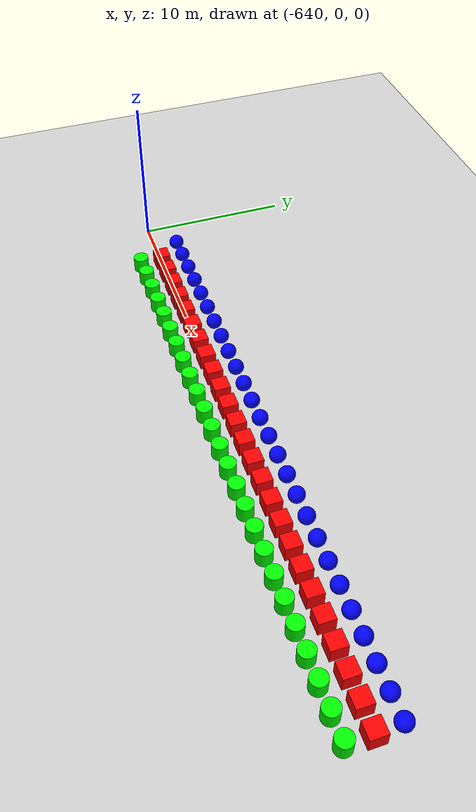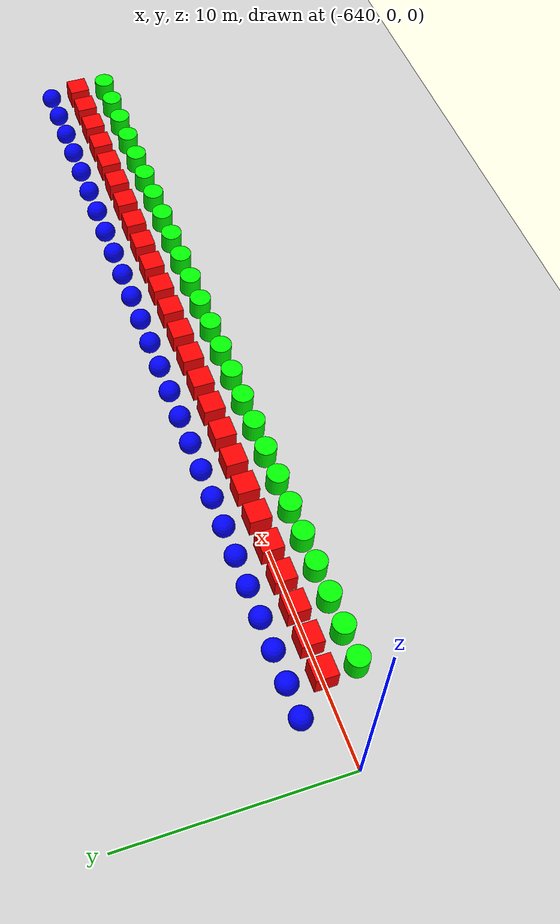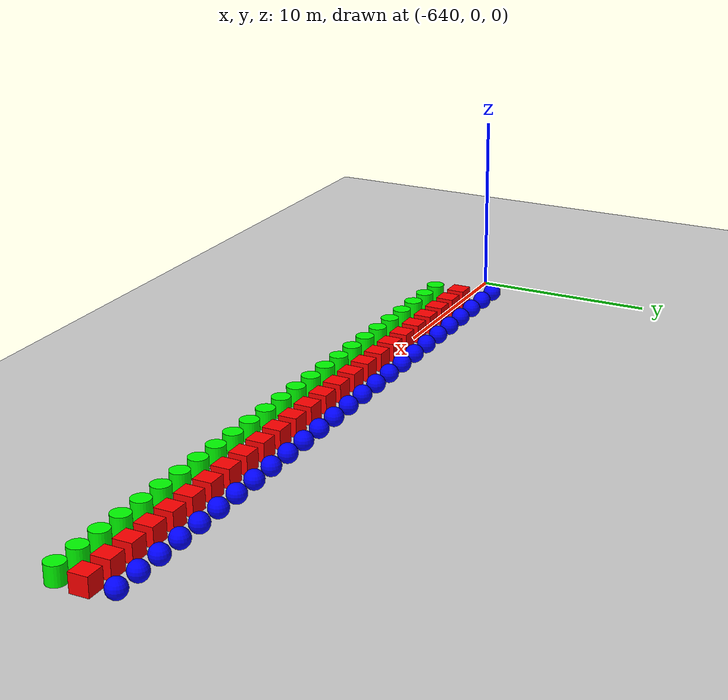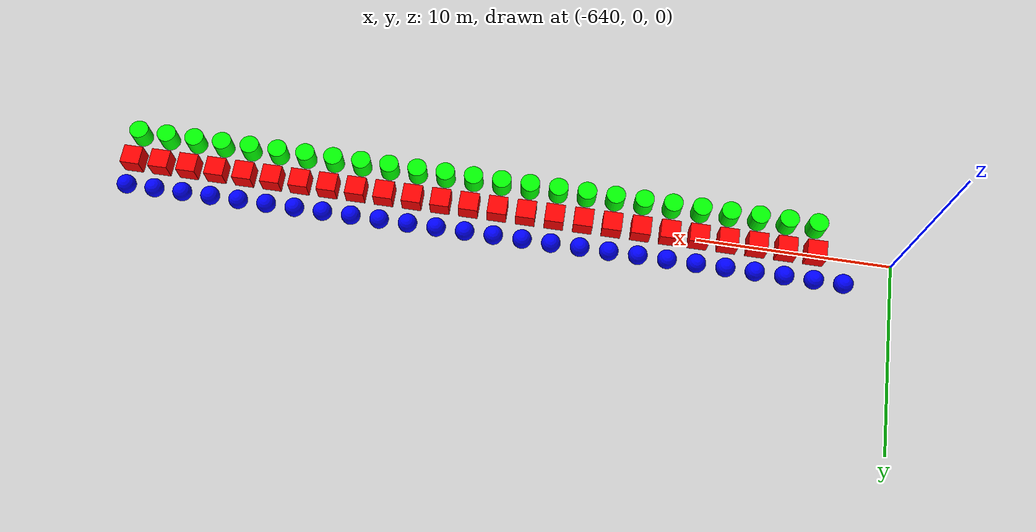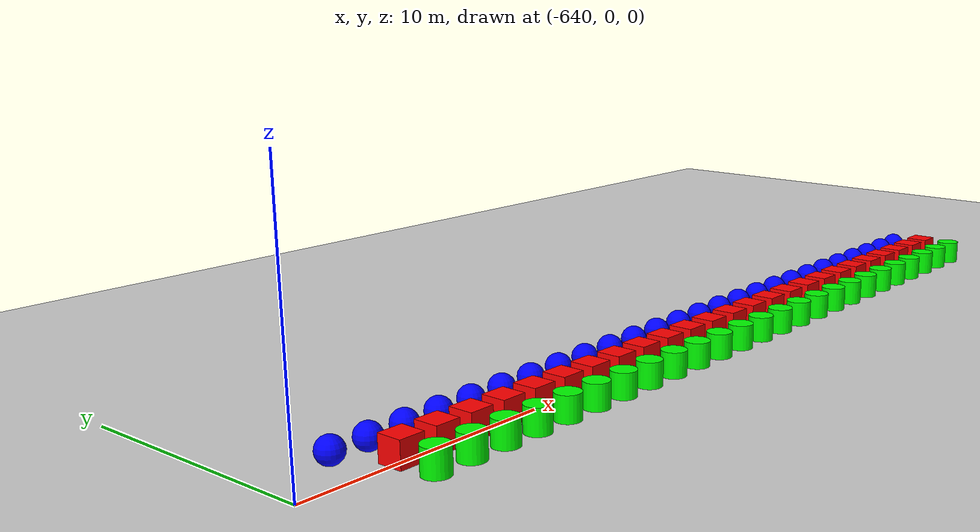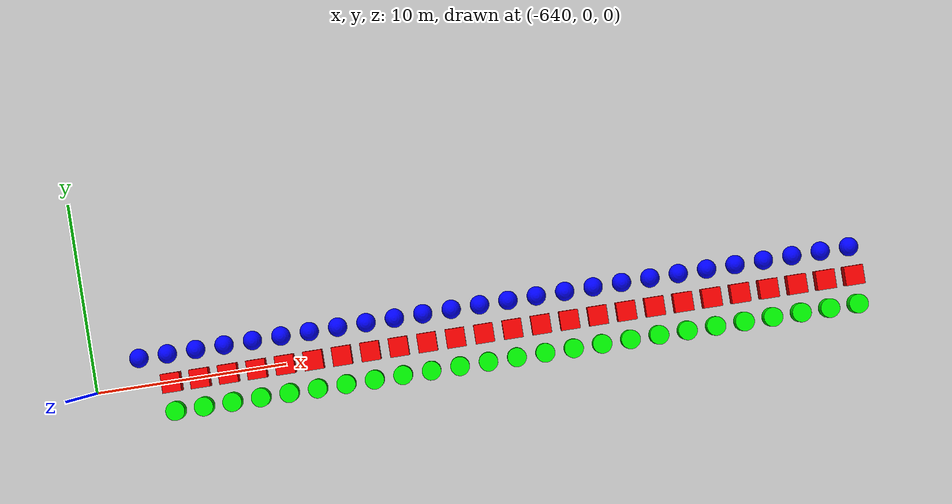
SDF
<sdf version="1.6">
 <world name="shapes">
  <model name="ground_plane">
   <static>true</static>
   <link name="link">
    <collision name="collision">
     <geometry><plane><normal>0 0 1</normal><size>100 100</size></plane></geometry>
    </collision>
    <visual name="visual">
     <geometry><plane><normal>0 0 1</normal><size>100 100</size></plane></geometry>
     <material>
      <ambient>0.8 0.8 0.8 1</ambient>
      <diffuse>0.8 0.8 0.8 1</diffuse>
      <specular>0.8 0.8 0.8 1</specular>
     </material>
    </visual>
   </link>
  </model>
  <model name="sphere_75">
   <pose>-637.5 1.5 0.5 0 0 0</pose>
   <link name="sphere_link">
    <inertial>
     <inertia><ixx>3</ixx><ixy>0</ixy><ixz>0</ixz><iyy>3</iyy><iyz>0</iyz><izz>3</izz></inertia>
     <mass>3.0</mass>
    </inertial>
    <collision name="sphere_collision"><geometry><sphere><radius>0.5</radius></sphere></geometry></collision>
    <visual name="sphere_visual">
     <geometry><sphere><radius>0.5</radius></sphere></geometry>
     <material><ambient>0 0 1 1</ambient><diffuse>0 0 1 1</diffuse><specular>0 0 1 1</specular></material>
    </visual>
   </link>
  </model>
  <model name="box_76">
   <pose>-636.0 0 0.5 0 0 0</pose>
   <link name="box_link">
    <inertial>
     <inertia><ixx>1</ixx><ixy>0</ixy><ixz>0</ixz><iyy>1</iyy><iyz>0</iyz><izz>1</izz></inertia>
     <mass>1.0</mass>
    </inertial>
    <collision name="box_collision"><geometry><box><size>1 1 1</size></box></geometry></collision>
    <visual name="box_visual">
     <geometry><box><size>1 1 1</size></box></geometry>
     <material><ambient>1 0 0 1</ambient><diffuse>1 0 0 1</diffuse><specular>1 0 0 1</specular></material>
    </visual>
   </link>
  </model>
  <model name="cylinder_76">
   <pose>-636.0 -1.5 0.5 0 0 0</pose>
   <link name="cylinder_link">
    <inertial>
     <inertia><ixx>2</ixx><ixy>0</ixy><ixz>0</ixz><iyy>2</iyy><iyz>0</iyz><izz>2</izz></inertia>
     <mass>2.0</mass>
    </inertial>
    <collision name="cylinder_collision">
     <geometry><cylinder><radius>0.5</radius><length>1.0</length></cylinder></geometry>
    </collision>
    <visual name="cylinder_visual">
     <geometry><cylinder><radius>0.5</radius><length>1.0</length></cylinder></geometry>
     <material><ambient>0 1 0 1</ambient><diffuse>0 1 0 1</diffuse><specular>0 1 0 1</specular></material>
    </visual>
   </link>
  </model>
  <model name="sphere_76">
   <pose>-636.0 1.5 0.5 0 0 0</pose>
   <link name="sphere_link">
    <inertial>
     <inertia><ixx>3</ixx><ixy>0</ixy><ixz>0</ixz><iyy>3</iyy><iyz>0</iyz><izz>3</izz></inertia>
     <mass>3.0</mass>
    </inertial>
    <collision name="sphere_collision"><geometry><sphere><radius>0.5</radius></sphere></geometry></collision>
    <visual name="sphere_visual">
     <geometry><sphere><radius>0.5</radius></sphere></geometry>
     <material><ambient>0 0 1 1</ambient><diffuse>0 0 1 1</diffuse><specular>0 0 1 1</specular></material>
    </visual>
   </link>
  </model>
  <model name="box_77">
   <pose>-634.5 0 0.5 0 0 0</pose>
   <link name="box_link">
    <inertial>
     <inertia><ixx>1</ixx><ixy>0</ixy><ixz>0</ixz><iyy>1</iyy><iyz>0</iyz><izz>1</izz></inertia>
     <mass>1.0</mass>
    </inertial>
    <collision name="box_collision"><geometry><box><size>1 1 1</size></box></geometry></collision>
    <visual name="box_visual">
     <geometry><box><size>1 1 1</size></box></geometry>
     <material><ambient>1 0 0 1</ambient><diffuse>1 0 0 1</diffuse><specular>1 0 0 1</specular></material>
    </visual>
   </link>
  </model>
  <model name="cylinder_77">
   <pose>-634.5 -1.5 0.5 0 0 0</pose>
   <link name="cylinder_link">
    <inertial>
     <inertia><ixx>2</ixx><ixy>0</ixy><ixz>0</ixz><iyy>2</iyy><iyz>0</iyz><izz>2</izz></inertia>
     <mass>2.0</mass>
    </inertial>
    <collision name="cylinder_collision">
     <geometry><cylinder><radius>0.5</radius><length>1.0</length></cylinder></geometry>
    </collision>
    <visual name="cylinder_visual">
     <geometry><cylinder><radius>0.5</radius><length>1.0</length></cylinder></geometry>
     <material><ambient>0 1 0 1</ambient><diffuse>0 1 0 1</diffuse><specular>0 1 0 1</specular></material>
    </visual>
   </link>
  </model>
  <model name="sphere_77">
   <pose>-634.5 1.5 0.5 0 0 0</pose>
   <link name="sphere_link">
    <inertial>
     <inertia><ixx>3</ixx><ixy>0</ixy><ixz>0</ixz><iyy>3</iyy><iyz>0</iyz><izz>3</izz></inertia>
     <mass>3.0</mass>
    </inertial>
    <collision name="sphere_collision"><geometry><sphere><radius>0.5</radius></sphere></geometry></collision>
    <visual name="sphere_visual">
     <geometry><sphere><radius>0.5</radius></sphere></geometry>
     <material><ambient>0 0 1 1</ambient><diffuse>0 0 1 1</diffuse><specular>0 0 1 1</specular></material>
    </visual>
   </link>
  </model>
  <model name="box_78">
   <pose>-633.0 0 0.5 0 0 0</pose>
   <link name="box_link">
    <inertial>
     <inertia><ixx>1</ixx><ixy>0</ixy><ixz>0</ixz><iyy>1</iyy><iyz>0</iyz><izz>1</izz></inertia>
     <mass>1.0</mass>
    </inertial>
    <collision name="box_collision"><geometry><box><size>1 1 1</size></box></geometry></collision>
    <visual name="box_visual">
     <geometry><box><size>1 1 1</size></box></geometry>
     <material><ambient>1 0 0 1</ambient><diffuse>1 0 0 1</diffuse><specular>1 0 0 1</specular></material>
    </visual>
   </link>
  </model>
  <model name="cylinder_78">
   <pose>-633.0 -1.5 0.5 0 0 0</pose>
   <link name="cylinder_link">
    <inertial>
     <inertia><ixx>2</ixx><ixy>0</ixy><ixz>0</ixz><iyy>2</iyy><iyz>0</iyz><izz>2</izz></inertia>
     <mass>2.0</mass>
    </inertial>
    <collision name="cylinder_collision">
     <geometry><cylinder><radius>0.5</radius><length>1.0</length></cylinder></geometry>
    </collision>
    <visual name="cylinder_visual">
     <geometry><cylinder><radius>0.5</radius><length>1.0</length></cylinder></geometry>
     <material><ambient>0 1 0 1</ambient><diffuse>0 1 0 1</diffuse><specular>0 1 0 1</specular></material>
    </visual>
   </link>
  </model>
  <model name="sphere_78">
   <pose>-633.0 1.5 0.5 0 0 0</pose>
   <link name="sphere_link">
    <inertial>
     <inertia><ixx>3</ixx><ixy>0</ixy><ixz>0</ixz><iyy>3</iyy><iyz>0</iyz><izz>3</izz></inertia>
     <mass>3.0</mass>
    </inertial>
    <collision name="sphere_collision"><geometry><sphere><radius>0.5</radius></sphere></geometry></collision>
    <visual name="sphere_visual">
     <geometry><sphere><radius>0.5</radius></sphere></geometry>
     <material><ambient>0 0 1 1</ambient><diffuse>0 0 1 1</diffuse><specular>0 0 1 1</specular></material>
    </visual>
   </link>
  </model>
  <model name="box_79">
   <pose>-631.5 0 0.5 0 0 0</pose>
   <link name="box_link">
    <inertial>
     <inertia><ixx>1</ixx><ixy>0</ixy><ixz>0</ixz><iyy>1</iyy><iyz>0</iyz><izz>1</izz></inertia>
     <mass>1.0</mass>
    </inertial>
    <collision name="box_collision"><geometry><box><size>1 1 1</size></box></geometry></collision>
    <visual name="box_visual">
     <geometry><box><size>1 1 1</size></box></geometry>
     <material><ambient>1 0 0 1</ambient><diffuse>1 0 0 1</diffuse><specular>1 0 0 1</specular></material>
    </visual>
   </link>
  </model>
  <model name="cylinder_79">
   <pose>-631.5 -1.5 0.5 0 0 0</pose>
   <link name="cylinder_link">
    <inertial>
     <inertia><ixx>2</ixx><ixy>0</ixy><ixz>0</ixz><iyy>2</iyy><iyz>0</iyz><izz>2</izz></inertia>
     <mass>2.0</mass>
    </inertial>
    <collision name="cylinder_collision">
     <geometry><cylinder><radius>0.5</radius><length>1.0</length></cylinder></geometry>
    </collision>
    <visual name="cylinder_visual">
     <geometry><cylinder><radius>0.5</radius><length>1.0</length></cylinder></geometry>
     <material><ambient>0 1 0 1</ambient><diffuse>0 1 0 1</diffuse><specular>0 1 0 1</specular></material>
    </visual>
   </link>
  </model>
  <model name="sphere_79">
   <pose>-631.5 1.5 0.5 0 0 0</pose>
   <link name="sphere_link">
    <inertial>
     <inertia><ixx>3</ixx><ixy>0</ixy><ixz>0</ixz><iyy>3</iyy><iyz>0</iyz><izz>3</izz></inertia>
     <mass>3.0</mass>
    </inertial>
    <collision name="sphere_collision"><geometry><sphere><radius>0.5</radius></sphere></geometry></collision>
    <visual name="sphere_visual">
     <geometry><sphere><radius>0.5</radius></sphere></geometry>
     <material><ambient>0 0 1 1</ambient><diffuse>0 0 1 1</diffuse><specular>0 0 1 1</specular></material>
    </visual>
   </link>
  </model>
  <model name="box_80">
   <pose>-630.0 0 0.5 0 0 0</pose>
   <link name="box_link">
    <inertial>
     <inertia><ixx>1</ixx><ixy>0</ixy><ixz>0</ixz><iyy>1</iyy><iyz>0</iyz><izz>1</izz></inertia>
     <mass>1.0</mass>
    </inertial>
    <collision name="box_collision"><geometry><box><size>1 1 1</size></box></geometry></collision>
    <visual name="box_visual">
     <geometry><box><size>1 1 1</size></box></geometry>
     <material><ambient>1 0 0 1</ambient><diffuse>1 0 0 1</diffuse><specular>1 0 0 1</specular></material>
    </visual>
   </link>
  </model>
  <model name="cylinder_80">
   <pose>-630.0 -1.5 0.5 0 0 0</pose>
   <link name="cylinder_link">
    <inertial>
     <inertia><ixx>2</ixx><ixy>0</ixy><ixz>0</ixz><iyy>2</iyy><iyz>0</iyz><izz>2</izz></inertia>
     <mass>2.0</mass>
    </inertial>
    <collision name="cylinder_collision">
     <geometry><cylinder><radius>0.5</radius><length>1.0</length></cylinder></geometry>
    </collision>
    <visual name="cylinder_visual">
     <geometry><cylinder><radius>0.5</radius><length>1.0</length></cylinder></geometry>
     <material><ambient>0 1 0 1</ambient><diffuse>0 1 0 1</diffuse><specular>0 1 0 1</specular></material>
    </visual>
   </link>
  </model>
  <model name="sphere_80">
   <pose>-630.0 1.5 0.5 0 0 0</pose>
   <link name="sphere_link">
    <inertial>
     <inertia><ixx>3</ixx><ixy>0</ixy><ixz>0</ixz><iyy>3</iyy><iyz>0</iyz><izz>3</izz></inertia>
     <mass>3.0</mass>
    </inertial>
    <collision name="sphere_collision"><geometry><sphere><radius>0.5</radius></sphere></geometry></collision>
    <visual name="sphere_visual">
     <geometry><sphere><radius>0.5</radius></sphere></geometry>
     <material><ambient>0 0 1 1</ambient><diffuse>0 0 1 1</diffuse><specular>0 0 1 1</specular></material>
    </visual>
   </link>
  </model>
  <model name="box_81">
   <pose>-628.5 0 0.5 0 0 0</pose>
   <link name="box_link">
    <inertial>
     <inertia><ixx>1</ixx><ixy>0</ixy><ixz>0</ixz><iyy>1</iyy><iyz>0</iyz><izz>1</izz></inertia>
     <mass>1.0</mass>
    </inertial>
    <collision name="box_collision"><geometry><box><size>1 1 1</size></box></geometry></collision>
    <visual name="box_visual">
     <geometry><box><size>1 1 1</size></box></geometry>
     <material><ambient>1 0 0 1</ambient><diffuse>1 0 0 1</diffuse><specular>1 0 0 1</specular></material>
    </visual>
   </link>
  </model>
  <model name="cylinder_81">
   <pose>-628.5 -1.5 0.5 0 0 0</pose>
   <link name="cylinder_link">
    <inertial>
     <inertia><ixx>2</ixx><ixy>0</ixy><ixz>0</ixz><iyy>2</iyy><iyz>0</iyz><izz>2</izz></inertia>
     <mass>2.0</mass>
    </inertial>
    <collision name="cylinder_collision">
     <geometry><cylinder><radius>0.5</radius><length>1.0</length></cylinder></geometry>
    </collision>
    <visual name="cylinder_visual">
     <geometry><cylinder><radius>0.5</radius><length>1.0</length></cylinder></geometry>
     <material><ambient>0 1 0 1</ambient><diffuse>0 1 0 1</diffuse><specular>0 1 0 1</specular></material>
    </visual>
   </link>
  </model>
  <model name="sphere_81">
   <pose>-628.5 1.5 0.5 0 0 0</pose>
   <link name="sphere_link">
    <inertial>
     <inertia><ixx>3</ixx><ixy>0</ixy><ixz>0</ixz><iyy>3</iyy><iyz>0</iyz><izz>3</izz></inertia>
     <mass>3.0</mass>
    </inertial>
    <collision name="sphere_collision"><geometry><sphere><radius>0.5</radius></sphere></geometry></collision>
    <visual name="sphere_visual">
     <geometry><sphere><radius>0.5</radius></sphere></geometry>
     <material><ambient>0 0 1 1</ambient><diffuse>0 0 1 1</diffuse><specular>0 0 1 1</specular></material>
    </visual>
   </link>
  </model>
  <model name="box_82">
   <pose>-627.0 0 0.5 0 0 0</pose>
   <link name="box_link">
    <inertial>
     <inertia><ixx>1</ixx><ixy>0</ixy><ixz>0</ixz><iyy>1</iyy><iyz>0</iyz><izz>1</izz></inertia>
     <mass>1.0</mass>
    </inertial>
    <collision name="box_collision"><geometry><box><size>1 1 1</size></box></geometry></collision>
    <visual name="box_visual">
     <geometry><box><size>1 1 1</size></box></geometry>
     <material><ambient>1 0 0 1</ambient><diffuse>1 0 0 1</diffuse><specular>1 0 0 1</specular></material>
    </visual>
   </link>
  </model>
  <model name="cylinder_82">
   <pose>-627.0 -1.5 0.5 0 0 0</pose>
   <link name="cylinder_link">
    <inertial>
     <inertia><ixx>2</ixx><ixy>0</ixy><ixz>0</ixz><iyy>2</iyy><iyz>0</iyz><izz>2</izz></inertia>
     <mass>2.0</mass>
    </inertial>
    <collision name="cylinder_collision">
     <geometry><cylinder><radius>0.5</radius><length>1.0</length></cylinder></geometry>
    </collision>
    <visual name="cylinder_visual">
     <geometry><cylinder><radius>0.5</radius><length>1.0</length></cylinder></geometry>
     <material><ambient>0 1 0 1</ambient><diffuse>0 1 0 1</diffuse><specular>0 1 0 1</specular></material>
    </visual>
   </link>
  </model>
  <model name="sphere_82">
   <pose>-627.0 1.5 0.5 0 0 0</pose>
   <link name="sphere_link">
    <inertial>
     <inertia><ixx>3</ixx><ixy>0</ixy><ixz>0</ixz><iyy>3</iyy><iyz>0</iyz><izz>3</izz></inertia>
     <mass>3.0</mass>
    </inertial>
    <collision name="sphere_collision"><geometry><sphere><radius>0.5</radius></sphere></geometry></collision>
    <visual name="sphere_visual">
     <geometry><sphere><radius>0.5</radius></sphere></geometry>
     <material><ambient>0 0 1 1</ambient><diffuse>0 0 1 1</diffuse><specular>0 0 1 1</specular></material>
    </visual>
   </link>
  </model>
  <model name="box_83">
   <pose>-625.5 0 0.5 0 0 0</pose>
   <link name="box_link">
    <inertial>
     <inertia><ixx>1</ixx><ixy>0</ixy><ixz>0</ixz><iyy>1</iyy><iyz>0</iyz><izz>1</izz></inertia>
     <mass>1.0</mass>
    </inertial>
    <collision name="box_collision"><geometry><box><size>1 1 1</size></box></geometry></collision>
    <visual name="box_visual">
     <geometry><box><size>1 1 1</size></box></geometry>
     <material><ambient>1 0 0 1</ambient><diffuse>1 0 0 1</diffuse><specular>1 0 0 1</specular></material>
    </visual>
   </link>
  </model>
  <model name="cylinder_83">
   <pose>-625.5 -1.5 0.5 0 0 0</pose>
   <link name="cylinder_link">
    <inertial>
     <inertia><ixx>2</ixx><ixy>0</ixy><ixz>0</ixz><iyy>2</iyy><iyz>0</iyz><izz>2</izz></inertia>
     <mass>2.0</mass>
    </inertial>
    <collision name="cylinder_collision">
     <geometry><cylinder><radius>0.5</radius><length>1.0</length></cylinder></geometry>
    </collision>
    <visual name="cylinder_visual">
     <geometry><cylinder><radius>0.5</radius><length>1.0</length></cylinder></geometry>
     <material><ambient>0 1 0 1</ambient><diffuse>0 1 0 1</diffuse><specular>0 1 0 1</specular></material>
    </visual>
   </link>
  </model>
  <model name="sphere_83">
   <pose>-625.5 1.5 0.5 0 0 0</pose>
   <link name="sphere_link">
    <inertial>
     <inertia><ixx>3</ixx><ixy>0</ixy><ixz>0</ixz><iyy>3</iyy><iyz>0</iyz><izz>3</izz></inertia>
     <mass>3.0</mass>
    </inertial>
    <collision name="sphere_collision"><geometry><sphere><radius>0.5</radius></sphere></geometry></collision>
    <visual name="sphere_visual">
     <geometry><sphere><radius>0.5</radius></sphere></geometry>
     <material><ambient>0 0 1 1</ambient><diffuse>0 0 1 1</diffuse><specular>0 0 1 1</specular></material>
    </visual>
   </link>
  </model>
  <model name="box_84">
   <pose>-624.0 0 0.5 0 0 0</pose>
   <link name="box_link">
    <inertial>
     <inertia><ixx>1</ixx><ixy>0</ixy><ixz>0</ixz><iyy>1</iyy><iyz>0</iyz><izz>1</izz></inertia>
     <mass>1.0</mass>
    </inertial>
    <collision name="box_collision"><geometry><box><size>1 1 1</size></box></geometry></collision>
    <visual name="box_visual">
     <geometry><box><size>1 1 1</size></box></geometry>
     <material><ambient>1 0 0 1</ambient><diffuse>1 0 0 1</diffuse><specular>1 0 0 1</specular></material>
    </visual>
   </link>
  </model>
  <model name="cylinder_84">
   <pose>-624.0 -1.5 0.5 0 0 0</pose>
   <link name="cylinder_link">
    <inertial>
     <inertia><ixx>2</ixx><ixy>0</ixy><ixz>0</ixz><iyy>2</iyy><iyz>0</iyz><izz>2</izz></inertia>
     <mass>2.0</mass>
    </inertial>
    <collision name="cylinder_collision">
     <geometry><cylinder><radius>0.5</radius><length>1.0</length></cylinder></geometry>
    </collision>
    <visual name="cylinder_visual">
     <geometry><cylinder><radius>0.5</radius><length>1.0</length></cylinder></geometry>
     <material><ambient>0 1 0 1</ambient><diffuse>0 1 0 1</diffuse><specular>0 1 0 1</specular></material>
    </visual>
   </link>
  </model>
  <model name="sphere_84">
   <pose>-624.0 1.5 0.5 0 0 0</pose>
   <link name="sphere_link">
    <inertial>
     <inertia><ixx>3</ixx><ixy>0</ixy><ixz>0</ixz><iyy>3</iyy><iyz>0</iyz><izz>3</izz></inertia>
     <mass>3.0</mass>
    </inertial>
    <collision name="sphere_collision"><geometry><sphere><radius>0.5</radius></sphere></geometry></collision>
    <visual name="sphere_visual">
     <geometry><sphere><radius>0.5</radius></sphere></geometry>
     <material><ambient>0 0 1 1</ambient><diffuse>0 0 1 1</diffuse><specular>0 0 1 1</specular></material>
    </visual>
   </link>
  </model>
  <model name="box_85">
   <pose>-622.5 0 0.5 0 0 0</pose>
   <link name="box_link">
    <inertial>
     <inertia><ixx>1</ixx><ixy>0</ixy><ixz>0</ixz><iyy>1</iyy><iyz>0</iyz><izz>1</izz></inertia>
     <mass>1.0</mass>
    </inertial>
    <collision name="box_collision"><geometry><box><size>1 1 1</size></box></geometry></collision>
    <visual name="box_visual">
     <geometry><box><size>1 1 1</size></box></geometry>
     <material><ambient>1 0 0 1</ambient><diffuse>1 0 0 1</diffuse><specular>1 0 0 1</specular></material>
    </visual>
   </link>
  </model>
  <model name="cylinder_85">
   <pose>-622.5 -1.5 0.5 0 0 0</pose>
   <link name="cylinder_link">
    <inertial>
     <inertia><ixx>2</ixx><ixy>0</ixy><ixz>0</ixz><iyy>2</iyy><iyz>0</iyz><izz>2</izz></inertia>
     <mass>2.0</mass>
    </inertial>
    <collision name="cylinder_collision">
     <geometry><cylinder><radius>0.5</radius><length>1.0</length></cylinder></geometry>
    </collision>
    <visual name="cylinder_visual">
     <geometry><cylinder><radius>0.5</radius><length>1.0</length></cylinder></geometry>
     <material><ambient>0 1 0 1</ambient><diffuse>0 1 0 1</diffuse><specular>0 1 0 1</specular></material>
    </visual>
   </link>
  </model>
  <model name="sphere_85">
   <pose>-622.5 1.5 0.5 0 0 0</pose>
   <link name="sphere_link">
    <inertial>
     <inertia><ixx>3</ixx><ixy>0</ixy><ixz>0</ixz><iyy>3</iyy><iyz>0</iyz><izz>3</izz></inertia>
     <mass>3.0</mass>
    </inertial>
    <collision name="sphere_collision"><geometry><sphere><radius>0.5</radius></sphere></geometry></collision>
    <visual name="sphere_visual">
     <geometry><sphere><radius>0.5</radius></sphere></geometry>
     <material><ambient>0 0 1 1</ambient><diffuse>0 0 1 1</diffuse><specular>0 0 1 1</specular></material>
    </visual>
   </link>
  </model>
  <model name="box_86">
   <pose>-621.0 0 0.5 0 0 0</pose>
   <link name="box_link">
    <inertial>
     <inertia><ixx>1</ixx><ixy>0</ixy><ixz>0</ixz><iyy>1</iyy><iyz>0</iyz><izz>1</izz></inertia>
     <mass>1.0</mass>
    </inertial>
    <collision name="box_collision"><geometry><box><size>1 1 1</size></box></geometry></collision>
    <visual name="box_visual">
     <geometry><box><size>1 1 1</size></box></geometry>
     <material><ambient>1 0 0 1</ambient><diffuse>1 0 0 1</diffuse><specular>1 0 0 1</specular></material>
    </visual>
   </link>
  </model>
  <model name="cylinder_86">
   <pose>-621.0 -1.5 0.5 0 0 0</pose>
   <link name="cylinder_link">
    <inertial>
     <inertia><ixx>2</ixx><ixy>0</ixy><ixz>0</ixz><iyy>2</iyy><iyz>0</iyz><izz>2</izz></inertia>
     <mass>2.0</mass>
    </inertial>
    <collision name="cylinder_collision">
     <geometry><cylinder><radius>0.5</radius><length>1.0</length></cylinder></geometry>
    </collision>
    <visual name="cylinder_visual">
     <geometry><cylinder><radius>0.5</radius><length>1.0</length></cylinder></geometry>
     <material><ambient>0 1 0 1</ambient><diffuse>0 1 0 1</diffuse><specular>0 1 0 1</specular></material>
    </visual>
   </link>
  </model>
  <model name="sphere_86">
   <pose>-621.0 1.5 0.5 0 0 0</pose>
   <link name="sphere_link">
    <inertial>
     <inertia><ixx>3</ixx><ixy>0</ixy><ixz>0</ixz><iyy>3</iyy><iyz>0</iyz><izz>3</izz></inertia>
     <mass>3.0</mass>
    </inertial>
    <collision name="sphere_collision"><geometry><sphere><radius>0.5</radius></sphere></geometry></collision>
    <visual name="sphere_visual">
     <geometry><sphere><radius>0.5</radius></sphere></geometry>
     <material><ambient>0 0 1 1</ambient><diffuse>0 0 1 1</diffuse><specular>0 0 1 1</specular></material>
    </visual>
   </link>
  </model>
  <model name="box_87">
   <pose>-619.5 0 0.5 0 0 0</pose>
   <link name="box_link">
    <inertial>
     <inertia><ixx>1</ixx><ixy>0</ixy><ixz>0</ixz><iyy>1</iyy><iyz>0</iyz><izz>1</izz></inertia>
     <mass>1.0</mass>
    </inertial>
    <collision name="box_collision"><geometry><box><size>1 1 1</size></box></geometry></collision>
    <visual name="box_visual">
     <geometry><box><size>1 1 1</size></box></geometry>
     <material><ambient>1 0 0 1</ambient><diffuse>1 0 0 1</diffuse><specular>1 0 0 1</specular></material>
    </visual>
   </link>
  </model>
  <model name="cylinder_87">
   <pose>-619.5 -1.5 0.5 0 0 0</pose>
   <link name="cylinder_link">
    <inertial>
     <inertia><ixx>2</ixx><ixy>0</ixy><ixz>0</ixz><iyy>2</iyy><iyz>0</iyz><izz>2</izz></inertia>
     <mass>2.0</mass>
    </inertial>
    <collision name="cylinder_collision">
     <geometry><cylinder><radius>0.5</radius><length>1.0</length></cylinder></geometry>
    </collision>
    <visual name="cylinder_visual">
     <geometry><cylinder><radius>0.5</radius><length>1.0</length></cylinder></geometry>
     <material><ambient>0 1 0 1</ambient><diffuse>0 1 0 1</diffuse><specular>0 1 0 1</specular></material>
    </visual>
   </link>
  </model>
  <model name="sphere_87">
   <pose>-619.5 1.5 0.5 0 0 0</pose>
   <link name="sphere_link">
    <inertial>
     <inertia><ixx>3</ixx><ixy>0</ixy><ixz>0</ixz><iyy>3</iyy><iyz>0</iyz><izz>3</izz></inertia>
     <mass>3.0</mass>
    </inertial>
    <collision name="sphere_collision"><geometry><sphere><radius>0.5</radius></sphere></geometry></collision>
    <visual name="sphere_visual">
     <geometry><sphere><radius>0.5</radius></sphere></geometry>
     <material><ambient>0 0 1 1</ambient><diffuse>0 0 1 1</diffuse><specular>0 0 1 1</specular></material>
    </visual>
   </link>
  </model>
  <model name="box_88">
   <pose>-618.0 0 0.5 0 0 0</pose>
   <link name="box_link">
    <inertial>
     <inertia><ixx>1</ixx><ixy>0</ixy><ixz>0</ixz><iyy>1</iyy><iyz>0</iyz><izz>1</izz></inertia>
     <mass>1.0</mass>
    </inertial>
    <collision name="box_collision"><geometry><box><size>1 1 1</size></box></geometry></collision>
    <visual name="box_visual">
     <geometry><box><size>1 1 1</size></box></geometry>
     <material><ambient>1 0 0 1</ambient><diffuse>1 0 0 1</diffuse><specular>1 0 0 1</specular></material>
    </visual>
   </link>
  </model>
  <model name="cylinder_88">
   <pose>-618.0 -1.5 0.5 0 0 0</pose>
   <link name="cylinder_link">
    <inertial>
     <inertia><ixx>2</ixx><ixy>0</ixy><ixz>0</ixz><iyy>2</iyy><iyz>0</iyz><izz>2</izz></inertia>
     <mass>2.0</mass>
    </inertial>
    <collision name="cylinder_collision">
     <geometry><cylinder><radius>0.5</radius><length>1.0</length></cylinder></geometry>
    </collision>
    <visual name="cylinder_visual">
     <geometry><cylinder><radius>0.5</radius><length>1.0</length></cylinder></geometry>
     <material><ambient>0 1 0 1</ambient><diffuse>0 1 0 1</diffuse><specular>0 1 0 1</specular></material>
    </visual>
   </link>
  </model>
  <model name="sphere_88">
   <pose>-618.0 1.5 0.5 0 0 0</pose>
   <link name="sphere_link">
    <inertial>
     <inertia><ixx>3</ixx><ixy>0</ixy><ixz>0</ixz><iyy>3</iyy><iyz>0</iyz><izz>3</izz></inertia>
     <mass>3.0</mass>
    </inertial>
    <collision name="sphere_collision"><geometry><sphere><radius>0.5</radius></sphere></geometry></collision>
    <visual name="sphere_visual">
     <geometry><sphere><radius>0.5</radius></sphere></geometry>
     <material><ambient>0 0 1 1</ambient><diffuse>0 0 1 1</diffuse><specular>0 0 1 1</specular></material>
    </visual>
   </link>
  </model>
  <model name="box_89">
   <pose>-616.5 0 0.5 0 0 0</pose>
   <link name="box_link">
    <inertial>
     <inertia><ixx>1</ixx><ixy>0</ixy><ixz>0</ixz><iyy>1</iyy><iyz>0</iyz><izz>1</izz></inertia>
     <mass>1.0</mass>
    </inertial>
    <collision name="box_collision"><geometry><box><size>1 1 1</size></box></geometry></collision>
    <visual name="box_visual">
     <geometry><box><size>1 1 1</size></box></geometry>
     <material><ambient>1 0 0 1</ambient><diffuse>1 0 0 1</diffuse><specular>1 0 0 1</specular></material>
    </visual>
   </link>
  </model>
  <model name="cylinder_89">
   <pose>-616.5 -1.5 0.5 0 0 0</pose>
   <link name="cylinder_link">
    <inertial>
     <inertia><ixx>2</ixx><ixy>0</ixy><ixz>0</ixz><iyy>2</iyy><iyz>0</iyz><izz>2</izz></inertia>
     <mass>2.0</mass>
    </inertial>
    <collision name="cylinder_collision">
     <geometry><cylinder><radius>0.5</radius><length>1.0</length></cylinder></geometry>
    </collision>
    <visual name="cylinder_visual">
     <geometry><cylinder><radius>0.5</radius><length>1.0</length></cylinder></geometry>
     <material><ambient>0 1 0 1</ambient><diffuse>0 1 0 1</diffuse><specular>0 1 0 1</specular></material>
    </visual>
   </link>
  </model>
  <model name="sphere_89">
   <pose>-616.5 1.5 0.5 0 0 0</pose>
   <link name="sphere_link">
    <inertial>
     <inertia><ixx>3</ixx><ixy>0</ixy><ixz>0</ixz><iyy>3</iyy><iyz>0</iyz><izz>3</izz></inertia>
     <mass>3.0</mass>
    </inertial>
    <collision name="sphere_collision"><geometry><sphere><radius>0.5</radius></sphere></geometry></collision>
    <visual name="sphere_visual">
     <geometry><sphere><radius>0.5</radius></sphere></geometry>
     <material><ambient>0 0 1 1</ambient><diffuse>0 0 1 1</diffuse><specular>0 0 1 1</specular></material>
    </visual>
   </link>
  </model>
  <model name="box_90">
   <pose>-615.0 0 0.5 0 0 0</pose>
   <link name="box_link">
    <inertial>
     <inertia><ixx>1</ixx><ixy>0</ixy><ixz>0</ixz><iyy>1</iyy><iyz>0</iyz><izz>1</izz></inertia>
     <mass>1.0</mass>
    </inertial>
    <collision name="box_collision"><geometry><box><size>1 1 1</size></box></geometry></collision>
    <visual name="box_visual">
     <geometry><box><size>1 1 1</size></box></geometry>
     <material><ambient>1 0 0 1</ambient><diffuse>1 0 0 1</diffuse><specular>1 0 0 1</specular></material>
    </visual>
   </link>
  </model>
  <model name="cylinder_90">
   <pose>-615.0 -1.5 0.5 0 0 0</pose>
   <link name="cylinder_link">
    <inertial>
     <inertia><ixx>2</ixx><ixy>0</ixy><ixz>0</ixz><iyy>2</iyy><iyz>0</iyz><izz>2</izz></inertia>
     <mass>2.0</mass>
    </inertial>
    <collision name="cylinder_collision">
     <geometry><cylinder><radius>0.5</radius><length>1.0</length></cylinder></geometry>
    </collision>
    <visual name="cylinder_visual">
     <geometry><cylinder><radius>0.5</radius><length>1.0</length></cylinder></geometry>
     <material><ambient>0 1 0 1</ambient><diffuse>0 1 0 1</diffuse><specular>0 1 0 1</specular></material>
    </visual>
   </link>
  </model>
  <model name="sphere_90">
   <pose>-615.0 1.5 0.5 0 0 0</pose>
   <link name="sphere_link">
    <inertial>
     <inertia><ixx>3</ixx><ixy>0</ixy><ixz>0</ixz><iyy>3</iyy><iyz>0</iyz><izz>3</izz></inertia>
     <mass>3.0</mass>
    </inertial>
    <collision name="sphere_collision"><geometry><sphere><radius>0.5</radius></sphere></geometry></collision>
    <visual name="sphere_visual">
     <geometry><sphere><radius>0.5</radius></sphere></geometry>
     <material><ambient>0 0 1 1</ambient><diffuse>0 0 1 1</diffuse><specular>0 0 1 1</specular></material>
    </visual>
   </link>
  </model>
  <model name="box_91">
   <pose>-613.5 0 0.5 0 0 0</pose>
   <link name="box_link">
    <inertial>
     <inertia><ixx>1</ixx><ixy>0</ixy><ixz>0</ixz><iyy>1</iyy><iyz>0</iyz><izz>1</izz></inertia>
     <mass>1.0</mass>
    </inertial>
    <collision name="box_collision"><geometry><box><size>1 1 1</size></box></geometry></collision>
    <visual name="box_visual">
     <geometry><box><size>1 1 1</size></box></geometry>
     <material><ambient>1 0 0 1</ambient><diffuse>1 0 0 1</diffuse><specular>1 0 0 1</specular></material>
    </visual>
   </link>
  </model>
  <model name="cylinder_91">
   <pose>-613.5 -1.5 0.5 0 0 0</pose>
   <link name="cylinder_link">
    <inertial>
     <inertia><ixx>2</ixx><ixy>0</ixy><ixz>0</ixz><iyy>2</iyy><iyz>0</iyz><izz>2</izz></inertia>
     <mass>2.0</mass>
    </inertial>
    <collision name="cylinder_collision">
     <geometry><cylinder><radius>0.5</radius><length>1.0</length></cylinder></geometry>
    </collision>
    <visual name="cylinder_visual">
     <geometry><cylinder><radius>0.5</radius><length>1.0</length></cylinder></geometry>
     <material><ambient>0 1 0 1</ambient><diffuse>0 1 0 1</diffuse><specular>0 1 0 1</specular></material>
    </visual>
   </link>
  </model>
  <model name="sphere_91">
   <pose>-613.5 1.5 0.5 0 0 0</pose>
   <link name="sphere_link">
    <inertial>
     <inertia><ixx>3</ixx><ixy>0</ixy><ixz>0</ixz><iyy>3</iyy><iyz>0</iyz><izz>3</izz></inertia>
     <mass>3.0</mass>
    </inertial>
    <collision name="sphere_collision"><geometry><sphere><radius>0.5</radius></sphere></geometry></collision>
    <visual name="sphere_visual">
     <geometry><sphere><radius>0.5</radius></sphere></geometry>
     <material><ambient>0 0 1 1</ambient><diffuse>0 0 1 1</diffuse><specular>0 0 1 1</specular></material>
    </visual>
   </link>
  </model>
  <model name="box_92">
   <pose>-612.0 0 0.5 0 0 0</pose>
   <link name="box_link">
    <inertial>
     <inertia><ixx>1</ixx><ixy>0</ixy><ixz>0</ixz><iyy>1</iyy><iyz>0</iyz><izz>1</izz></inertia>
     <mass>1.0</mass>
    </inertial>
    <collision name="box_collision"><geometry><box><size>1 1 1</size></box></geometry></collision>
    <visual name="box_visual">
     <geometry><box><size>1 1 1</size></box></geometry>
     <material><ambient>1 0 0 1</ambient><diffuse>1 0 0 1</diffuse><specular>1 0 0 1</specular></material>
    </visual>
   </link>
  </model>
  <model name="cylinder_92">
   <pose>-612.0 -1.5 0.5 0 0 0</pose>
   <link name="cylinder_link">
    <inertial>
     <inertia><ixx>2</ixx><ixy>0</ixy><ixz>0</ixz><iyy>2</iyy><iyz>0</iyz><izz>2</izz></inertia>
     <mass>2.0</mass>
    </inertial>
    <collision name="cylinder_collision">
     <geometry><cylinder><radius>0.5</radius><length>1.0</length></cylinder></geometry>
    </collision>
    <visual name="cylinder_visual">
     <geometry><cylinder><radius>0.5</radius><length>1.0</length></cylinder></geometry>
     <material><ambient>0 1 0 1</ambient><diffuse>0 1 0 1</diffuse><specular>0 1 0 1</specular></material>
    </visual>
   </link>
  </model>
  <model name="sphere_92">
   <pose>-612.0 1.5 0.5 0 0 0</pose>
   <link name="sphere_link">
    <inertial>
     <inertia><ixx>3</ixx><ixy>0</ixy><ixz>0</ixz><iyy>3</iyy><iyz>0</iyz><izz>3</izz></inertia>
     <mass>3.0</mass>
    </inertial>
    <collision name="sphere_collision"><geometry><sphere><radius>0.5</radius></sphere></geometry></collision>
    <visual name="sphere_visual">
     <geometry><sphere><radius>0.5</radius></sphere></geometry>
     <material><ambient>0 0 1 1</ambient><diffuse>0 0 1 1</diffuse><specular>0 0 1 1</specular></material>
    </visual>
   </link>
  </model>
  <model name="box_93">
   <pose>-610.5 0 0.5 0 0 0</pose>
   <link name="box_link">
    <inertial>
     <inertia><ixx>1</ixx><ixy>0</ixy><ixz>0</ixz><iyy>1</iyy><iyz>0</iyz><izz>1</izz></inertia>
     <mass>1.0</mass>
    </inertial>
    <collision name="box_collision"><geometry><box><size>1 1 1</size></box></geometry></collision>
    <visual name="box_visual">
     <geometry><box><size>1 1 1</size></box></geometry>
     <material><ambient>1 0 0 1</ambient><diffuse>1 0 0 1</diffuse><specular>1 0 0 1</specular></material>
    </visual>
   </link>
  </model>
  <model name="cylinder_93">
   <pose>-610.5 -1.5 0.5 0 0 0</pose>
   <link name="cylinder_link">
    <inertial>
     <inertia><ixx>2</ixx><ixy>0</ixy><ixz>0</ixz><iyy>2</iyy><iyz>0</iyz><izz>2</izz></inertia>
     <mass>2.0</mass>
    </inertial>
    <collision name="cylinder_collision">
     <geometry><cylinder><radius>0.5</radius><length>1.0</length></cylinder></geometry>
    </collision>
    <visual name="cylinder_visual">
     <geometry><cylinder><radius>0.5</radius><length>1.0</length></cylinder></geometry>
     <material><ambient>0 1 0 1</ambient><diffuse>0 1 0 1</diffuse><specular>0 1 0 1</specular></material>
    </visual>
   </link>
  </model>
  <model name="sphere_93">
   <pose>-610.5 1.5 0.5 0 0 0</pose>
   <link name="sphere_link">
    <inertial>
     <inertia><ixx>3</ixx><ixy>0</ixy><ixz>0</ixz><iyy>3</iyy><iyz>0</iyz><izz>3</izz></inertia>
     <mass>3.0</mass>
    </inertial>
    <collision name="sphere_collision"><geometry><sphere><radius>0.5</radius></sphere></geometry></collision>
    <visual name="sphere_visual">
     <geometry><sphere><radius>0.5</radius></sphere></geometry>
     <material><ambient>0 0 1 1</ambient><diffuse>0 0 1 1</diffuse><specular>0 0 1 1</specular></material>
    </visual>
   </link>
  </model>
  <model name="box_94">
   <pose>-609.0 0 0.5 0 0 0</pose>
   <link name="box_link">
    <inertial>
     <inertia><ixx>1</ixx><ixy>0</ixy><ixz>0</ixz><iyy>1</iyy><iyz>0</iyz><izz>1</izz></inertia>
     <mass>1.0</mass>
    </inertial>
    <collision name="box_collision"><geometry><box><size>1 1 1</size></box></geometry></collision>
    <visual name="box_visual">
     <geometry><box><size>1 1 1</size></box></geometry>
     <material><ambient>1 0 0 1</ambient><diffuse>1 0 0 1</diffuse><specular>1 0 0 1</specular></material>
    </visual>
   </link>
  </model>
  <model name="cylinder_94">
   <pose>-609.0 -1.5 0.5 0 0 0</pose>
   <link name="cylinder_link">
    <inertial>
     <inertia><ixx>2</ixx><ixy>0</ixy><ixz>0</ixz><iyy>2</iyy><iyz>0</iyz><izz>2</izz></inertia>
     <mass>2.0</mass>
    </inertial>
    <collision name="cylinder_collision">
     <geometry><cylinder><radius>0.5</radius><length>1.0</length></cylinder></geometry>
    </collision>
    <visual name="cylinder_visual">
     <geometry><cylinder><radius>0.5</radius><length>1.0</length></cylinder></geometry>
     <material><ambient>0 1 0 1</ambient><diffuse>0 1 0 1</diffuse><specular>0 1 0 1</specular></material>
    </visual>
   </link>
  </model>
  <model name="sphere_94">
   <pose>-609.0 1.5 0.5 0 0 0</pose>
   <link name="sphere_link">
    <inertial>
     <inertia><ixx>3</ixx><ixy>0</ixy><ixz>0</ixz><iyy>3</iyy><iyz>0</iyz><izz>3</izz></inertia>
     <mass>3.0</mass>
    </inertial>
    <collision name="sphere_collision"><geometry><sphere><radius>0.5</radius></sphere></geometry></collision>
    <visual name="sphere_visual">
     <geometry><sphere><radius>0.5</radius></sphere></geometry>
     <material><ambient>0 0 1 1</ambient><diffuse>0 0 1 1</diffuse><specular>0 0 1 1</specular></material>
    </visual>
   </link>
  </model>
  <model name="box_95">
   <pose>-607.5 0 0.5 0 0 0</pose>
   <link name="box_link">
    <inertial>
     <inertia><ixx>1</ixx><ixy>0</ixy><ixz>0</ixz><iyy>1</iyy><iyz>0</iyz><izz>1</izz></inertia>
     <mass>1.0</mass>
    </inertial>
    <collision name="box_collision"><geometry><box><size>1 1 1</size></box></geometry></collision>
    <visual name="box_visual">
     <geometry><box><size>1 1 1</size></box></geometry>
     <material><ambient>1 0 0 1</ambient><diffuse>1 0 0 1</diffuse><specular>1 0 0 1</specular></material>
    </visual>
   </link>
  </model>
  <model name="cylinder_95">
   <pose>-607.5 -1.5 0.5 0 0 0</pose>
   <link name="cylinder_link">
    <inertial>
     <inertia><ixx>2</ixx><ixy>0</ixy><ixz>0</ixz><iyy>2</iyy><iyz>0</iyz><izz>2</izz></inertia>
     <mass>2.0</mass>
    </inertial>
    <collision name="cylinder_collision">
     <geometry><cylinder><radius>0.5</radius><length>1.0</length></cylinder></geometry>
    </collision>
    <visual name="cylinder_visual">
     <geometry><cylinder><radius>0.5</radius><length>1.0</length></cylinder></geometry>
     <material><ambient>0 1 0 1</ambient><diffuse>0 1 0 1</diffuse><specular>0 1 0 1</specular></material>
    </visual>
   </link>
  </model>
  <model name="sphere_95">
   <pose>-607.5 1.5 0.5 0 0 0</pose>
   <link name="sphere_link">
    <inertial>
     <inertia><ixx>3</ixx><ixy>0</ixy><ixz>0</ixz><iyy>3</iyy><iyz>0</iyz><izz>3</izz></inertia>
     <mass>3.0</mass>
    </inertial>
    <collision name="sphere_collision"><geometry><sphere><radius>0.5</radius></sphere></geometry></collision>
    <visual name="sphere_visual">
     <geometry><sphere><radius>0.5</radius></sphere></geometry>
     <material><ambient>0 0 1 1</ambient><diffuse>0 0 1 1</diffuse><specular>0 0 1 1</specular></material>
    </visual>
   </link>
  </model>
  <model name="box_96">
   <pose>-606.0 0 0.5 0 0 0</pose>
   <link name="box_link">
    <inertial>
     <inertia><ixx>1</ixx><ixy>0</ixy><ixz>0</ixz><iyy>1</iyy><iyz>0</iyz><izz>1</izz></inertia>
     <mass>1.0</mass>
    </inertial>
    <collision name="box_collision"><geometry><box><size>1 1 1</size></box></geometry></collision>
    <visual name="box_visual">
     <geometry><box><size>1 1 1</size></box></geometry>
     <material><ambient>1 0 0 1</ambient><diffuse>1 0 0 1</diffuse><specular>1 0 0 1</specular></material>
    </visual>
   </link>
  </model>
  <model name="cylinder_96">
   <pose>-606.0 -1.5 0.5 0 0 0</pose>
   <link name="cylinder_link">
    <inertial>
     <inertia><ixx>2</ixx><ixy>0</ixy><ixz>0</ixz><iyy>2</iyy><iyz>0</iyz><izz>2</izz></inertia>
     <mass>2.0</mass>
    </inertial>
    <collision name="cylinder_collision">
     <geometry><cylinder><radius>0.5</radius><length>1.0</length></cylinder></geometry>
    </collision>
    <visual name="cylinder_visual">
     <geometry><cylinder><radius>0.5</radius><length>1.0</length></cylinder></geometry>
     <material><ambient>0 1 0 1</ambient><diffuse>0 1 0 1</diffuse><specular>0 1 0 1</specular></material>
    </visual>
   </link>
  </model>
  <model name="sphere_96">
   <pose>-606.0 1.5 0.5 0 0 0</pose>
   <link name="sphere_link">
    <inertial>
     <inertia><ixx>3</ixx><ixy>0</ixy><ixz>0</ixz><iyy>3</iyy><iyz>0</iyz><izz>3</izz></inertia>
     <mass>3.0</mass>
    </inertial>
    <collision name="sphere_collision"><geometry><sphere><radius>0.5</radius></sphere></geometry></collision>
    <visual name="sphere_visual">
     <geometry><sphere><radius>0.5</radius></sphere></geometry>
     <material><ambient>0 0 1 1</ambient><diffuse>0 0 1 1</diffuse><specular>0 0 1 1</specular></material>
    </visual>
   </link>
  </model>
  <model name="box_97">
   <pose>-604.5 0 0.5 0 0 0</pose>
   <link name="box_link">
    <inertial>
     <inertia><ixx>1</ixx><ixy>0</ixy><ixz>0</ixz><iyy>1</iyy><iyz>0</iyz><izz>1</izz></inertia>
     <mass>1.0</mass>
    </inertial>
    <collision name="box_collision"><geometry><box><size>1 1 1</size></box></geometry></collision>
    <visual name="box_visual">
     <geometry><box><size>1 1 1</size></box></geometry>
     <material><ambient>1 0 0 1</ambient><diffuse>1 0 0 1</diffuse><specular>1 0 0 1</specular></material>
    </visual>
   </link>
  </model>
  <model name="cylinder_97">
   <pose>-604.5 -1.5 0.5 0 0 0</pose>
   <link name="cylinder_link">
    <inertial>
     <inertia><ixx>2</ixx><ixy>0</ixy><ixz>0</ixz><iyy>2</iyy><iyz>0</iyz><izz>2</izz></inertia>
     <mass>2.0</mass>
    </inertial>
    <collision name="cylinder_collision">
     <geometry><cylinder><radius>0.5</radius><length>1.0</length></cylinder></geometry>
    </collision>
    <visual name="cylinder_visual">
     <geometry><cylinder><radius>0.5</radius><length>1.0</length></cylinder></geometry>
     <material><ambient>0 1 0 1</ambient><diffuse>0 1 0 1</diffuse><specular>0 1 0 1</specular></material>
    </visual>
   </link>
  </model>
  <model name="sphere_97">
   <pose>-604.5 1.5 0.5 0 0 0</pose>
   <link name="sphere_link">
    <inertial>
     <inertia><ixx>3</ixx><ixy>0</ixy><ixz>0</ixz><iyy>3</iyy><iyz>0</iyz><izz>3</izz></inertia>
     <mass>3.0</mass>
    </inertial>
    <collision name="sphere_collision"><geometry><sphere><radius>0.5</radius></sphere></geometry></collision>
    <visual name="sphere_visual">
     <geometry><sphere><radius>0.5</radius></sphere></geometry>
     <material><ambient>0 0 1 1</ambient><diffuse>0 0 1 1</diffuse><specular>0 0 1 1</specular></material>
    </visual>
   </link>
  </model>
  <model name="box_98">
   <pose>-603.0 0 0.5 0 0 0</pose>
   <link name="box_link">
    <inertial>
     <inertia><ixx>1</ixx><ixy>0</ixy><ixz>0</ixz><iyy>1</iyy><iyz>0</iyz><izz>1</izz></inertia>
     <mass>1.0</mass>
    </inertial>
    <collision name="box_collision"><geometry><box><size>1 1 1</size></box></geometry></collision>
    <visual name="box_visual">
     <geometry><box><size>1 1 1</size></box></geometry>
     <material><ambient>1 0 0 1</ambient><diffuse>1 0 0 1</diffuse><specular>1 0 0 1</specular></material>
    </visual>
   </link>
  </model>
  <model name="cylinder_98">
   <pose>-603.0 -1.5 0.5 0 0 0</pose>
   <link name="cylinder_link">
    <inertial>
     <inertia><ixx>2</ixx><ixy>0</ixy><ixz>0</ixz><iyy>2</iyy><iyz>0</iyz><izz>2</izz></inertia>
     <mass>2.0</mass>
    </inertial>
    <collision name="cylinder_collision">
     <geometry><cylinder><radius>0.5</radius><length>1.0</length></cylinder></geometry>
    </collision>
    <visual name="cylinder_visual">
     <geometry><cylinder><radius>0.5</radius><length>1.0</length></cylinder></geometry>
     <material><ambient>0 1 0 1</ambient><diffuse>0 1 0 1</diffuse><specular>0 1 0 1</specular></material>
    </visual>
   </link>
  </model>
  <model name="sphere_98">
   <pose>-603.0 1.5 0.5 0 0 0</pose>
   <link name="sphere_link">
    <inertial>
     <inertia><ixx>3</ixx><ixy>0</ixy><ixz>0</ixz><iyy>3</iyy><iyz>0</iyz><izz>3</izz></inertia>
     <mass>3.0</mass>
    </inertial>
    <collision name="sphere_collision"><geometry><sphere><radius>0.5</radius></sphere></geometry></collision>
    <visual name="sphere_visual">
     <geometry><sphere><radius>0.5</radius></sphere></geometry>
     <material><ambient>0 0 1 1</ambient><diffuse>0 0 1 1</diffuse><specular>0 0 1 1</specular></material>
    </visual>
   </link>
  </model>
  <model name="box_99">
   <pose>-601.5 0 0.5 0 0 0</pose>
   <link name="box_link">
    <inertial>
     <inertia><ixx>1</ixx><ixy>0</ixy><ixz>0</ixz><iyy>1</iyy><iyz>0</iyz><izz>1</izz></inertia>
     <mass>1.0</mass>
    </inertial>
    <collision name="box_collision"><geometry><box><size>1 1 1</size></box></geometry></collision>
    <visual name="box_visual">
     <geometry><box><size>1 1 1</size></box></geometry>
     <material><ambient>1 0 0 1</ambient><diffuse>1 0 0 1</diffuse><specular>1 0 0 1</specular></material>
    </visual>
   </link>
  </model>
  <model name="cylinder_99">
   <pose>-601.5 -1.5 0.5 0 0 0</pose>
   <link name="cylinder_link">
    <inertial>
     <inertia><ixx>2</ixx><ixy>0</ixy><ixz>0</ixz><iyy>2</iyy><iyz>0</iyz><izz>2</izz></inertia>
     <mass>2.0</mass>
    </inertial>
    <collision name="cylinder_collision">
     <geometry><cylinder><radius>0.5</radius><length>1.0</length></cylinder></geometry>
    </collision>
    <visual name="cylinder_visual">
     <geometry><cylinder><radius>0.5</radius><length>1.0</length></cylinder></geometry>
     <material><ambient>0 1 0 1</ambient><diffuse>0 1 0 1</diffuse><specular>0 1 0 1</specular></material>
    </visual>
   </link>
  </model>
  <model name="sphere_99">
   <pose>-601.5 1.5 0.5 0 0 0</pose>
   <link name="sphere_link">
    <inertial>
     <inertia><ixx>3</ixx><ixy>0</ixy><ixz>0</ixz><iyy>3</iyy><iyz>0</iyz><izz>3</izz></inertia>
     <mass>3.0</mass>
    </inertial>
    <collision name="sphere_collision"><geometry><sphere><radius>0.5</radius></sphere></geometry></collision>
    <visual name="sphere_visual">
     <geometry><sphere><radius>0.5</radius></sphere></geometry>
     <material><ambient>0 0 1 1</ambient><diffuse>0 0 1 1</diffuse><specular>0 0 1 1</specular></material>
    </visual>
   </link>
  </model>
  <model name="box_100">
   <pose>-600.0 0 0.5 0 0 0</pose>
   <link name="box_link">
    <inertial>
     <inertia><ixx>1</ixx><ixy>0</ixy><ixz>0</ixz><iyy>1</iyy><iyz>0</iyz><izz>1</izz></inertia>
     <mass>1.0</mass>
    </inertial>
    <collision name="box_collision"><geometry><box><size>1 1 1</size></box></geometry></collision>
    <visual name="box_visual">
     <geometry><box><size>1 1 1</size></box></geometry>
     <material><ambient>1 0 0 1</ambient><diffuse>1 0 0 1</diffuse><specular>1 0 0 1</specular></material>
    </visual>
   </link>
  </model>
  <model name="cylinder_100">
   <pose>-600.0 -1.5 0.5 0 0 0</pose>
   <link name="cylinder_link">
    <inertial>
     <inertia><ixx>2</ixx><ixy>0</ixy><ixz>0</ixz><iyy>2</iyy><iyz>0</iyz><izz>2</izz></inertia>
     <mass>2.0</mass>
    </inertial>
    <collision name="cylinder_collision">
     <geometry><cylinder><radius>0.5</radius><length>1.0</length></cylinder></geometry>
    </collision>
    <visual name="cylinder_visual">
     <geometry><cylinder><radius>0.5</radius><length>1.0</length></cylinder></geometry>
     <material><ambient>0 1 0 1</ambient><diffuse>0 1 0 1</diffuse><specular>0 1 0 1</specular></material>
    </visual>
   </link>
  </model>
  <model name="sphere_100">
   <pose>-600.0 1.5 0.5 0 0 0</pose>
   <link name="sphere_link">
    <inertial>
     <inertia><ixx>3</ixx><ixy>0</ixy><ixz>0</ixz><iyy>3</iyy><iyz>0</iyz><izz>3</izz></inertia>
     <mass>3.0</mass>
    </inertial>
    <collision name="sphere_collision"><geometry><sphere><radius>0.5</radius></sphere></geometry></collision>
    <visual name="sphere_visual">
     <geometry><sphere><radius>0.5</radius></sphere></geometry>
     <material><ambient>0 0 1 1</ambient><diffuse>0 0 1 1</diffuse><specular>0 0 1 1</specular></material>
    </visual>
   </link>
  </model>
 </world>
</sdf>
